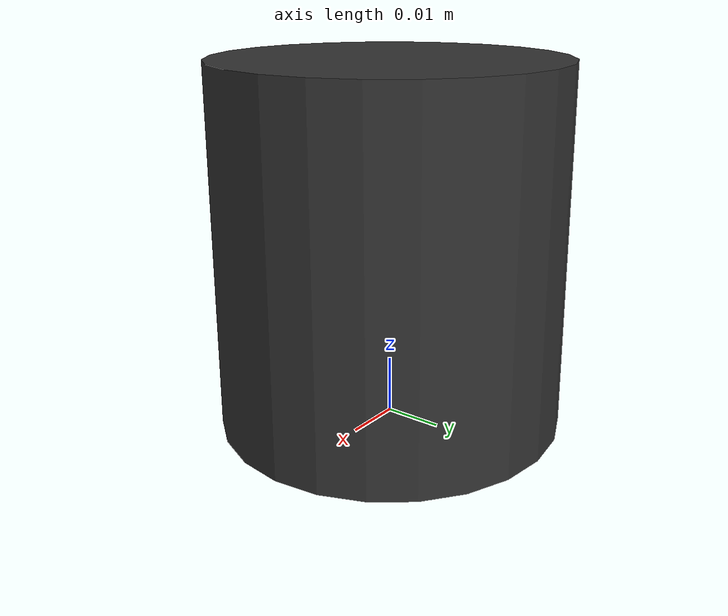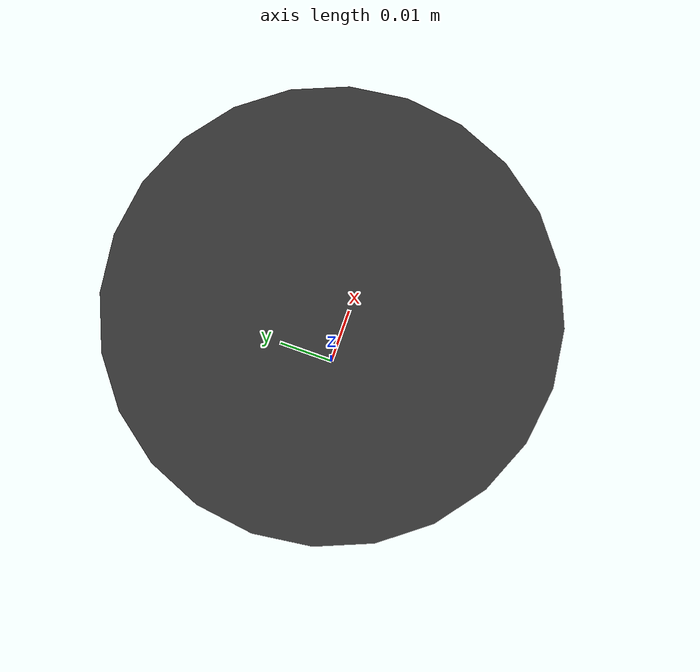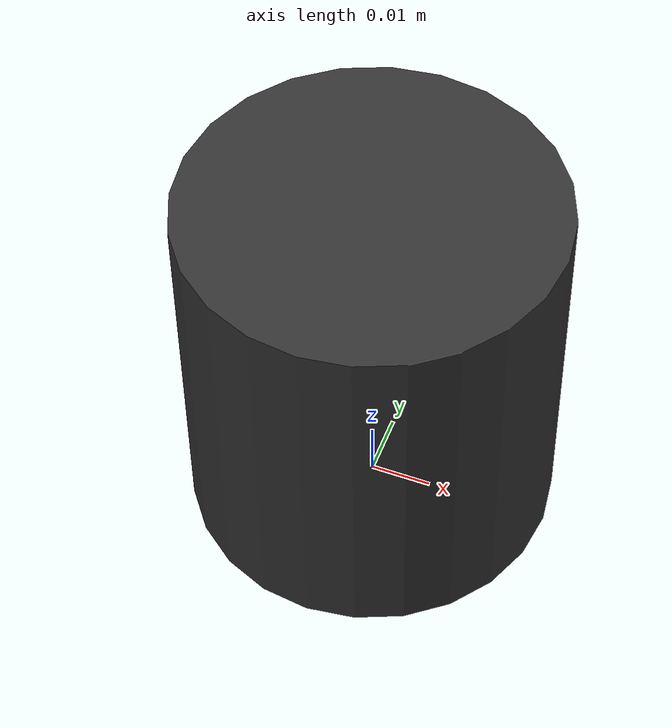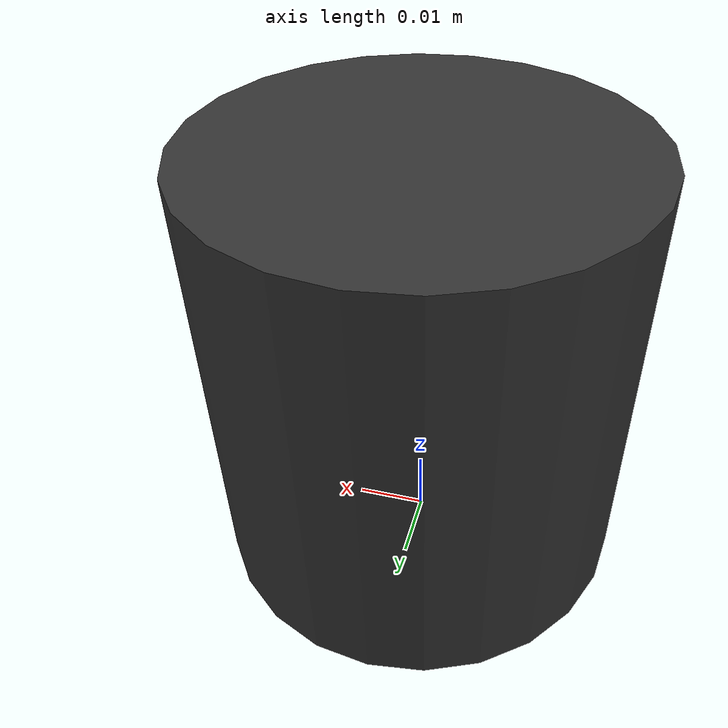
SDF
<?xml version="1.0"?>
<sdf version="1.6">
  <model name="airy_lidar">
    <link name="airy_link">
      <pose>0 0 0 0 0 0</pose>
      <inertial>
        <pose>0 0 0.0315 0 0 0</pose>
        <mass>0.24</mass>
        <inertia>
          <ixx>0.000145</ixx><ixy>0</ixy><ixz>0</ixz>
          <iyy>0.000145</iyy><iyz>0</iyz>
          <izz>0.000108</izz>
        </inertia>
      </inertial>
      <collision name="collision">
        <pose>0 0 0.0315 0 0 0</pose>
        <geometry>
          <cylinder><radius>0.030</radius><length>0.063</length></cylinder>
        </geometry>
      </collision>
      <visual name="visual">
        <pose>0 0 0.0315 0 0 0</pose>
        <geometry>
          <cylinder><radius>0.030</radius><length>0.063</length></cylinder>
        </geometry>
        <material>
          <ambient>0.1 0.1 0.1 1</ambient>
          <diffuse>0.2 0.2 0.2 1</diffuse>
          <specular>0.5 0.5 0.5 1</specular>
        </material>
      </visual>
      <sensor name="airy_lidar" type="gpu_lidar">
        <gz_frame_id>airy_link</gz_frame_id>
        <pose>0 0 0.0315 0 0 0</pose>
        <update_rate>10</update_rate>
        <ray>
          <scan>
            <horizontal>
              <samples>900</samples>
              <resolution>1</resolution>
              <min_angle>-3.14159</min_angle>
              <max_angle>3.14159</max_angle>
            </horizontal>
            <vertical>
              <samples>96</samples>
              <resolution>1</resolution>
              <min_angle>0</min_angle>
              <max_angle>1.5708</max_angle>
            </vertical>
          </scan>
          <range>
            <min>0.1</min>
            <max>60.0</max>
            <resolution>0.01</resolution>
          </range>
          <noise>
            <type>gaussian</type>
            <mean>0.0</mean>
            <stddev>0.01</stddev>
          </noise>
        </ray>
        <always_on>1</always_on>
        <visualize>true</visualize>
      </sensor>
    </link>
  </model>
</sdf>
